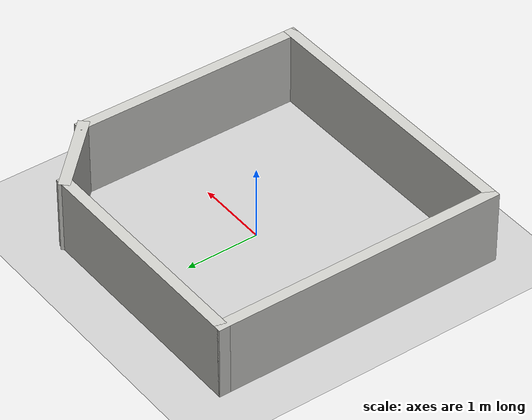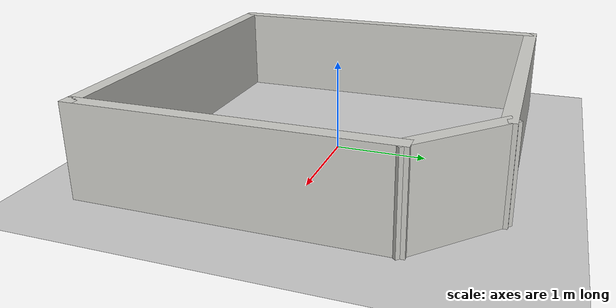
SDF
<sdf version="1.6">
 <world name="default">
  <light name="sun" type="directional">
   <pose>0 0 10 0 -0 0</pose>
   <diffuse>0.8 0.8 0.8 1</diffuse>
   <specular>0.2 0.2 0.2 1</specular>
   <attenuation>
    <range>1000</range>
    <constant>0.9</constant>
    <linear>0.01</linear>
    <quadratic>0.001</quadratic>
   </attenuation>
   <direction>-0.5 0.1 -0.9</direction>
  </light>
  <model name="ground_plane">
   <static>1</static>
   <link name="link">
    <collision name="collision">
     <geometry><plane><normal>0 0 1</normal><size>100 100</size></plane></geometry>
     <surface><friction><ode><mu>100</mu><mu2>50</mu2></ode></friction></surface>
    </collision>
    <visual name="visual">
     <cast_shadows>0</cast_shadows>
     <geometry><plane><normal>0 0 1</normal><size>100 100</size></plane></geometry>
     <material>
      <script><uri>file://media/materials/scripts/gazebo.material</uri><name>Gazebo/Grey</name></script>
     </material>
    </visual>
   </link>
  </model>
  <gravity>0 0 -9.8</gravity>
  <magnetic_field>6e-06 2.3e-05 -4.2e-05</magnetic_field>
  <atmosphere type="adiabatic"/>
  <physics name="default_physics" default="0" type="ode">
   <max_step_size>0.001</max_step_size>
   <real_time_factor>1</real_time_factor>
   <real_time_update_rate>1000</real_time_update_rate>
  </physics>
  <scene><ambient>0.4 0.4 0.4 1</ambient><background>0.7 0.7 0.7 1</background><shadows>1</shadows></scene>
  <spherical_coordinates>
   <surface_model>EARTH_WGS84</surface_model>
   <latitude_deg>0</latitude_deg>
   <longitude_deg>0</longitude_deg>
   <elevation>0</elevation>
   <heading_deg>0</heading_deg>
  </spherical_coordinates>
  <model name="Untitled_0">
   <pose>0 0.6 0 0 -0 0</pose>
   <link name="Wall_10">
    <collision name="Wall_10_Collision">
     <geometry><box><size>4 0.15 1</size></box></geometry>
     <pose>0 0 0.5 0 -0 0</pose>
    </collision>
    <visual name="Wall_10_Visual">
     <pose>0 0 0.5 0 -0 0</pose>
     <geometry><box><size>4 0.15 1</size></box></geometry>
     <material>
      <script><uri>file://media/materials/scripts/gazebo.material</uri><name>Gazebo/CeilingTiled</name></script>
      <ambient>0.596078 1 0.901961 1</ambient>
     </material>
     <meta><layer>0</layer></meta>
    </visual>
    <pose>-0.015533 -2.53878 0 0 -0 0</pose>
   </link>
   <link name="Wall_11">
    <collision name="Wall_11_Collision">
     <geometry><box><size>3.25 0.15 1</size></box></geometry>
     <pose>0 0 0.5 0 -0 0</pose>
    </collision>
    <visual name="Wall_11_Visual">
     <pose>0 0 0.5 0 -0 0</pose>
     <geometry><box><size>3.25 0.15 1</size></box></geometry>
     <material>
      <script><uri>file://media/materials/scripts/gazebo.material</uri><name>Gazebo/CeilingTiled</name></script>
      <ambient>0.596078 1 0.901961 1</ambient>
     </material>
     <meta><layer>0</layer></meta>
    </visual>
    <pose>1.90947 -0.988781 0 0 -0 1.5708</pose>
   </link>
   <link name="Wall_13">
    <collision name="Wall_13_Collision">
     <geometry><box><size>3.25 0.15 1</size></box></geometry>
     <pose>0 0 0.5 0 -0 0</pose>
    </collision>
    <visual name="Wall_13_Visual">
     <pose>0 0 0.5 0 -0 0</pose>
     <geometry><box><size>3.25 0.15 1</size></box></geometry>
     <material>
      <script><uri>file://media/materials/scripts/gazebo.material</uri><name>Gazebo/CeilingTiled</name></script>
      <ambient>0.596078 1 0.901961 1</ambient>
     </material>
     <meta><layer>0</layer></meta>
    </visual>
    <pose>-0.390533 1.31122 0 0 -0 0</pose>
   </link>
   <link name="Wall_14">
    <collision name="Wall_14_Collision">
     <geometry><box><size>1.21066 0.15 1</size></box></geometry>
     <pose>0 0 0.5 0 -0 0</pose>
    </collision>
    <visual name="Wall_14_Visual">
     <pose>0 0 0.5 0 -0 0</pose>
     <geometry><box><size>1.21066 0.15 1</size></box></geometry>
     <material>
      <script><uri>file://media/materials/scripts/gazebo.material</uri><name>Gazebo/CeilingTiled</name></script>
      <ambient>0.596078 1 0.901961 1</ambient>
     </material>
     <meta><layer>0</layer></meta>
    </visual>
    <pose>1.53447 0.936219 0 0 -0 -0.785398</pose>
   </link>
   <link name="Wall_9">
    <collision name="Wall_9_Collision">
     <geometry><box><size>4 0.15 1</size></box></geometry>
     <pose>0 0 0.5 0 -0 0</pose>
    </collision>
    <visual name="Wall_9_Visual">
     <pose>0 0 0.5 0 -0 0</pose>
     <geometry><box><size>4 0.15 1</size></box></geometry>
     <material>
      <script><uri>file://media/materials/scripts/gazebo.material</uri><name>Gazebo/CeilingTiled</name></script>
      <ambient>0.596078 1 0.901961 1</ambient>
     </material>
     <meta><layer>0</layer></meta>
    </visual>
    <pose>-1.94053 -0.613781 0 0 -0 -1.5708</pose>
   </link>
   <static>1</static>
  </model>
 </world>
</sdf>
